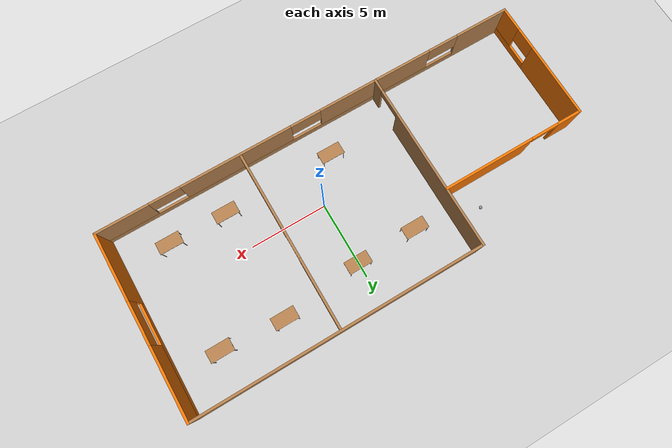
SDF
<sdf version="1.6">
 <world name="default">
  <model name="ground_plane">
   <static>1</static>
   <link name="link">
    <collision name="collision">
     <geometry><plane><normal>0 0 1</normal><size>100 100</size></plane></geometry>
     <surface>
      <contact><collide_bitmask>65535</collide_bitmask></contact>
      <friction><ode><mu>100</mu><mu2>50</mu2></ode></friction>
     </surface>
    </collision>
    <visual name="visual">
     <cast_shadows>0</cast_shadows>
     <geometry><plane><normal>0 0 1</normal><size>100 100</size></plane></geometry>
     <material>
      <script><uri>file://media/materials/scripts/gazebo.material</uri><name>Gazebo/Grey</name></script>
     </material>
    </visual>
   </link>
  </model>
  <model name="model_0">
   <pose>-1.7701 1.17451 0 0 -0 0</pose>
   <link name="Wall_0">
    <pose>-13.9251 -1.88049 0 0 0 -1.5708</pose>
    <visual name="Wall_0_Visual_0">
     <pose>-1.55568 0 1.25 0 -0 0</pose>
     <geometry><box><size>4.88864 0.15 2.5</size></box></geometry>
     <material>
      <script><uri>file://media/materials/scripts/gazebo.material</uri><name>Gazebo/Grey</name></script>
      <ambient>0.996078 0.47451 0.0196078 1</ambient>
     </material>
     <meta><layer>0</layer></meta>
    </visual>
    <collision name="Wall_0_Collision_0">
     <geometry><box><size>4.88864 0.15 2.5</size></box></geometry>
     <pose>-1.55568 0 1.25 0 -0 0</pose>
    </collision>
    <visual name="Wall_0_Visual_1">
     <pose>2.44432 0 0.25 0 -0 0</pose>
     <geometry><box><size>3.11136 0.15 0.5</size></box></geometry>
     <material>
      <script><uri>file://media/materials/scripts/gazebo.material</uri><name>Gazebo/Grey</name></script>
      <ambient>0.996078 0.47451 0.0196078 1</ambient>
     </material>
     <meta><layer>0</layer></meta>
    </visual>
    <collision name="Wall_0_Collision_1">
     <geometry><box><size>3.11136 0.15 0.5</size></box></geometry>
     <pose>2.44432 0 0.25 0 -0 0</pose>
    </collision>
    <visual name="Wall_0_Visual_2">
     <pose>3.17682 0 1.5 0 -0 0</pose>
     <geometry><box><size>1.64636 0.15 2</size></box></geometry>
     <material>
      <script><uri>file://media/materials/scripts/gazebo.material</uri><name>Gazebo/Grey</name></script>
      <ambient>0.996078 0.47451 0.0196078 1</ambient>
     </material>
     <meta><layer>0</layer></meta>
    </visual>
    <collision name="Wall_0_Collision_2">
     <geometry><box><size>1.64636 0.15 2</size></box></geometry>
     <pose>3.17682 0 1.5 0 -0 0</pose>
    </collision>
    <visual name="Wall_0_Visual_3">
     <pose>1.62114 0 1.9 0 -0 0</pose>
     <geometry><box><size>1.465 0.15 1.2</size></box></geometry>
     <material>
      <script><uri>file://media/materials/scripts/gazebo.material</uri><name>Gazebo/Grey</name></script>
      <ambient>0.996078 0.47451 0.0196078 1</ambient>
     </material>
     <meta><layer>0</layer></meta>
    </visual>
    <collision name="Wall_0_Collision_3">
     <geometry><box><size>1.465 0.15 1.2</size></box></geometry>
     <pose>1.62114 0 1.9 0 -0 0</pose>
    </collision>
   </link>
   <link name="Wall_1">
    <pose>-8.2e-05 -5.80549 0 0 -0 0</pose>
    <visual name="Wall_1_Visual_0">
     <pose>-12.1941 0 1.25 0 -0 0</pose>
     <geometry><box><size>3.61183 0.15 2.5</size></box></geometry>
     <material>
      <script><uri>file://media/materials/scripts/gazebo.material</uri><name>Gazebo/Wood</name></script>
      <ambient>0.996078 0.47451 0.0196078 1</ambient>
     </material>
     <meta><layer>0</layer></meta>
    </visual>
    <collision name="Wall_1_Collision_0">
     <geometry><box><size>3.61183 0.15 2.5</size></box></geometry>
     <pose>-12.1941 0 1.25 0 -0 0</pose>
    </collision>
    <visual name="Wall_1_Visual_1">
     <pose>1.80591 0 0.25 0 -0 0</pose>
     <geometry><box><size>24.3882 0.15 0.5</size></box></geometry>
     <material>
      <script><uri>file://media/materials/scripts/gazebo.material</uri><name>Gazebo/Wood</name></script>
      <ambient>0.996078 0.47451 0.0196078 1</ambient>
     </material>
     <meta><layer>0</layer></meta>
    </visual>
    <collision name="Wall_1_Collision_1">
     <geometry><box><size>24.3882 0.15 0.5</size></box></geometry>
     <pose>1.80591 0 0.25 0 -0 0</pose>
    </collision>
    <visual name="Wall_1_Visual_2">
     <pose>-4.52874 0 1.5 0 -0 0</pose>
     <geometry><box><size>7.67163 0.15 2</size></box></geometry>
     <material>
      <script><uri>file://media/materials/scripts/gazebo.material</uri><name>Gazebo/Wood</name></script>
      <ambient>0.996078 0.47451 0.0196078 1</ambient>
     </material>
     <meta><layer>0</layer></meta>
    </visual>
    <collision name="Wall_1_Collision_2">
     <geometry><box><size>7.67163 0.15 2</size></box></geometry>
     <pose>-4.52874 0 1.5 0 -0 0</pose>
    </collision>
    <visual name="Wall_1_Visual_3">
     <pose>4.938 0 1.5 0 -0 0</pose>
     <geometry><box><size>7.27582 0.15 2</size></box></geometry>
     <material>
      <script><uri>file://media/materials/scripts/gazebo.material</uri><name>Gazebo/Wood</name></script>
      <ambient>0.996078 0.47451 0.0196078 1</ambient>
     </material>
     <meta><layer>0</layer></meta>
    </visual>
    <collision name="Wall_1_Collision_3">
     <geometry><box><size>7.27582 0.15 2</size></box></geometry>
     <pose>4.938 0 1.5 0 -0 0</pose>
    </collision>
    <visual name="Wall_1_Visual_4">
     <pose>12.2845 0 1.5 0 -0 0</pose>
     <geometry><box><size>3.43107 0.15 2</size></box></geometry>
     <material>
      <script><uri>file://media/materials/scripts/gazebo.material</uri><name>Gazebo/Wood</name></script>
      <ambient>0.996078 0.47451 0.0196078 1</ambient>
     </material>
     <meta><layer>0</layer></meta>
    </visual>
    <collision name="Wall_1_Collision_4">
     <geometry><box><size>3.43107 0.15 2</size></box></geometry>
     <pose>12.2845 0 1.5 0 -0 0</pose>
    </collision>
    <visual name="Wall_1_Visual_5">
     <pose>-9.37637 0 1.9 0 -0 0</pose>
     <geometry><box><size>2.02361 0.15 1.2</size></box></geometry>
     <material>
      <script><uri>file://media/materials/scripts/gazebo.material</uri><name>Gazebo/Wood</name></script>
      <ambient>0.996078 0.47451 0.0196078 1</ambient>
     </material>
     <meta><layer>0</layer></meta>
    </visual>
    <collision name="Wall_1_Collision_5">
     <geometry><box><size>2.02361 0.15 1.2</size></box></geometry>
     <pose>-9.37637 0 1.9 0 -0 0</pose>
    </collision>
    <visual name="Wall_1_Visual_6">
     <pose>0.30358 0 1.9 0 -0 0</pose>
     <geometry><box><size>1.99302 0.15 1.2</size></box></geometry>
     <material>
      <script><uri>file://media/materials/scripts/gazebo.material</uri><name>Gazebo/Wood</name></script>
      <ambient>0.996078 0.47451 0.0196078 1</ambient>
     </material>
     <meta><layer>0</layer></meta>
    </visual>
    <collision name="Wall_1_Collision_6">
     <geometry><box><size>1.99302 0.15 1.2</size></box></geometry>
     <pose>0.30358 0 1.9 0 -0 0</pose>
    </collision>
    <visual name="Wall_1_Visual_7">
     <pose>9.57242 0 1.9 0 -0 0</pose>
     <geometry><box><size>1.99302 0.15 1.2</size></box></geometry>
     <material>
      <script><uri>file://media/materials/scripts/gazebo.material</uri><name>Gazebo/Wood</name></script>
      <ambient>0.996078 0.47451 0.0196078 1</ambient>
     </material>
     <meta><layer>0</layer></meta>
    </visual>
    <collision name="Wall_1_Collision_7">
     <geometry><box><size>1.99302 0.15 1.2</size></box></geometry>
     <pose>9.57242 0 1.9 0 -0 0</pose>
    </collision>
   </link>
   <link name="Wall_17">
    <pose>-4.52976 0.005045 0 0 -0 1.5708</pose>
    <visual name="Wall_17_Visual_0">
     <pose>-5.45834 0 1.25 0 -0 0</pose>
     <geometry><box><size>0.833314 0.15 2.5</size></box></geometry>
     <material>
      <script><uri>file://media/materials/scripts/gazebo.material</uri><name>Gazebo/Wood</name></script>
      <ambient>0.996078 0.47451 0.0196078 1</ambient>
     </material>
     <meta><layer>0</layer></meta>
    </visual>
    <collision name="Wall_17_Collision_0">
     <geometry><box><size>0.833314 0.15 2.5</size></box></geometry>
     <pose>-5.45834 0 1.25 0 -0 0</pose>
    </collision>
    <visual name="Wall_17_Visual_1">
     <pose>1.27963 0 1.25 0 -0 0</pose>
     <geometry><box><size>9.19075 0.15 2.5</size></box></geometry>
     <material>
      <script><uri>file://media/materials/scripts/gazebo.material</uri><name>Gazebo/Wood</name></script>
      <ambient>0.996078 0.47451 0.0196078 1</ambient>
     </material>
     <meta><layer>0</layer></meta>
    </visual>
    <collision name="Wall_17_Collision_1">
     <geometry><box><size>9.19075 0.15 2.5</size></box></geometry>
     <pose>1.27963 0 1.25 0 -0 0</pose>
    </collision>
    <visual name="Wall_17_Visual_2">
     <pose>-4.17872 0 2.25 0 -0 0</pose>
     <geometry><box><size>1.72594 0.15 0.5</size></box></geometry>
     <material>
      <script><uri>file://media/materials/scripts/gazebo.material</uri><name>Gazebo/Wood</name></script>
      <ambient>0.996078 0.47451 0.0196078 1</ambient>
     </material>
     <meta><layer>0</layer></meta>
    </visual>
    <collision name="Wall_17_Collision_2">
     <geometry><box><size>1.72594 0.15 0.5</size></box></geometry>
     <pose>-4.17872 0 2.25 0 -0 0</pose>
    </collision>
   </link>
   <link name="Wall_18">
    <collision name="Wall_18_Collision">
     <geometry><box><size>18.6048 0.15 2.5</size></box></geometry>
     <pose>0 0 1.25 0 -0 0</pose>
    </collision>
    <visual name="Wall_18_Visual">
     <pose>0 0 1.25 0 -0 0</pose>
     <geometry><box><size>18.6048 0.15 2.5</size></box></geometry>
     <material>
      <script><uri>file://media/materials/scripts/gazebo.material</uri><name>Gazebo/Wood</name></script>
      <ambient>0.996078 0.47451 0.0196078 1</ambient>
     </material>
     <meta><layer>0</layer></meta>
    </visual>
    <pose>4.69766 5.80527 0 0 -0 2.4e-05</pose>
   </link>
   <link name="Wall_28">
    <pose>4.6779 0.031971 0 0 0 -1.5708</pose>
    <visual name="Wall_28_Visual_0">
     <pose>-3.47499 0 1.25 0 -0 0</pose>
     <geometry><box><size>4.55003 0.15 2.5</size></box></geometry>
     <material>
      <script><uri>file://media/materials/scripts/gazebo.material</uri><name>Gazebo/Wood</name></script>
      <ambient>0.996078 0.47451 0.0196078 1</ambient>
     </material>
     <meta><layer>0</layer></meta>
    </visual>
    <collision name="Wall_28_Collision_0">
     <geometry><box><size>4.55003 0.15 2.5</size></box></geometry>
     <pose>-3.47499 0 1.25 0 -0 0</pose>
    </collision>
    <visual name="Wall_28_Visual_1">
     <pose>3.22975 0 1.25 0 -0 0</pose>
     <geometry><box><size>5.0405 0.15 2.5</size></box></geometry>
     <material>
      <script><uri>file://media/materials/scripts/gazebo.material</uri><name>Gazebo/Wood</name></script>
      <ambient>0.996078 0.47451 0.0196078 1</ambient>
     </material>
     <meta><layer>0</layer></meta>
    </visual>
    <collision name="Wall_28_Collision_1">
     <geometry><box><size>5.0405 0.15 2.5</size></box></geometry>
     <pose>3.22975 0 1.25 0 -0 0</pose>
    </collision>
    <visual name="Wall_28_Visual_2">
     <pose>-0.245234 0 2.25 0 -0 0</pose>
     <geometry><box><size>1.90948 0.15 0.5</size></box></geometry>
     <material>
      <script><uri>file://media/materials/scripts/gazebo.material</uri><name>Gazebo/Wood</name></script>
      <ambient>0.996078 0.47451 0.0196078 1</ambient>
     </material>
     <meta><layer>0</layer></meta>
    </visual>
    <collision name="Wall_28_Collision_2">
     <geometry><box><size>1.90948 0.15 0.5</size></box></geometry>
     <pose>-0.245234 0 2.25 0 -0 0</pose>
    </collision>
   </link>
   <link name="Wall_30">
    <pose>13.925 0 0 0 -0 1.57078</pose>
    <visual name="Wall_30_Visual_0">
     <pose>-3.67463 0 1.25 0 -0 0</pose>
     <geometry><box><size>4.41173 0.15 2.5</size></box></geometry>
     <material>
      <script><uri>file://media/materials/scripts/gazebo.material</uri><name>Gazebo/Grey</name></script>
      <ambient>0.996078 0.47451 0.0196078 1</ambient>
     </material>
     <meta><layer>0</layer></meta>
    </visual>
    <collision name="Wall_30_Collision_0">
     <geometry><box><size>4.41173 0.15 2.5</size></box></geometry>
     <pose>-3.67463 0 1.25 0 -0 0</pose>
    </collision>
    <visual name="Wall_30_Visual_1">
     <pose>2.20587 0 0.25 0 -0 0</pose>
     <geometry><box><size>7.34926 0.15 0.5</size></box></geometry>
     <material>
      <script><uri>file://media/materials/scripts/gazebo.material</uri><name>Gazebo/Grey</name></script>
      <ambient>0.996078 0.47451 0.0196078 1</ambient>
     </material>
     <meta><layer>0</layer></meta>
    </visual>
    <collision name="Wall_30_Collision_1">
     <geometry><box><size>7.34926 0.15 0.5</size></box></geometry>
     <pose>2.20587 0 0.25 0 -0 0</pose>
    </collision>
    <visual name="Wall_30_Visual_2">
     <pose>3.56946 0 1.5 0 -0 0</pose>
     <geometry><box><size>4.62207 0.15 2</size></box></geometry>
     <material>
      <script><uri>file://media/materials/scripts/gazebo.material</uri><name>Gazebo/Grey</name></script>
      <ambient>0.996078 0.47451 0.0196078 1</ambient>
     </material>
     <meta><layer>0</layer></meta>
    </visual>
    <collision name="Wall_30_Collision_2">
     <geometry><box><size>4.62207 0.15 2</size></box></geometry>
     <pose>3.56946 0 1.5 0 -0 0</pose>
    </collision>
    <visual name="Wall_30_Visual_3">
     <pose>-0.105172 0 1.9 0 -0 0</pose>
     <geometry><box><size>2.72718 0.15 1.2</size></box></geometry>
     <material>
      <script><uri>file://media/materials/scripts/gazebo.material</uri><name>Gazebo/Grey</name></script>
      <ambient>0.996078 0.47451 0.0196078 1</ambient>
     </material>
     <meta><layer>0</layer></meta>
    </visual>
    <collision name="Wall_30_Collision_3">
     <geometry><box><size>2.72718 0.15 1.2</size></box></geometry>
     <pose>-0.105172 0 1.9 0 -0 0</pose>
    </collision>
   </link>
   <link name="Wall_7">
    <pose>-9.25008 2.04451 0 0 -0 0</pose>
    <visual name="Wall_7_Visual_0">
     <pose>-3.92004 0 1.25 0 -0 0</pose>
     <geometry><box><size>1.65992 0.15 2.5</size></box></geometry>
     <material>
      <script><uri>file://media/materials/scripts/gazebo.material</uri><name>Gazebo/Grey</name></script>
      <ambient>0.996078 0.47451 0.0196078 1</ambient>
     </material>
     <meta><layer>0</layer></meta>
    </visual>
    <collision name="Wall_7_Collision_0">
     <geometry><box><size>1.65992 0.15 2.5</size></box></geometry>
     <pose>-3.92004 0 1.25 0 -0 0</pose>
    </collision>
    <visual name="Wall_7_Visual_1">
     <pose>1.74546 0 1.25 0 -0 0</pose>
     <geometry><box><size>6.00908 0.15 2.5</size></box></geometry>
     <material>
      <script><uri>file://media/materials/scripts/gazebo.material</uri><name>Gazebo/Grey</name></script>
      <ambient>0.996078 0.47451 0.0196078 1</ambient>
     </material>
     <meta><layer>0</layer></meta>
    </visual>
    <collision name="Wall_7_Collision_1">
     <geometry><box><size>6.00908 0.15 2.5</size></box></geometry>
     <pose>1.74546 0 1.25 0 -0 0</pose>
    </collision>
    <visual name="Wall_7_Visual_2">
     <pose>-2.17458 0 2.25 0 -0 0</pose>
     <geometry><box><size>1.83101 0.15 0.5</size></box></geometry>
     <material>
      <script><uri>file://media/materials/scripts/gazebo.material</uri><name>Gazebo/Grey</name></script>
      <ambient>0.996078 0.47451 0.0196078 1</ambient>
     </material>
     <meta><layer>0</layer></meta>
    </visual>
    <collision name="Wall_7_Collision_2">
     <geometry><box><size>1.83101 0.15 0.5</size></box></geometry>
     <pose>-2.17458 0 2.25 0 -0 0</pose>
    </collision>
   </link>
   <static>1</static>
  </model>
  <model name="table">
   <static>1</static>
   <link name="link">
    <collision name="surface">
     <pose>0 0 1 0 -0 0</pose>
     <geometry><box><size>1.5 0.8 0.03</size></box></geometry>
     <surface><friction><ode><mu>0.6</mu><mu2>0.6</mu2></ode></friction></surface>
    </collision>
    <visual name="visual1">
     <pose>0 0 1 0 -0 0</pose>
     <geometry><box><size>1.5 0.8 0.03</size></box></geometry>
     <material>
      <script><uri>file://media/materials/scripts/gazebo.material</uri><name>Gazebo/Wood</name></script>
     </material>
    </visual>
    <collision name="front_left_leg">
     <pose>0.68 0.38 0.5 0 -0 0</pose>
     <geometry><cylinder><radius>0.02</radius><length>1</length></cylinder></geometry>
    </collision>
    <visual name="front_left_leg">
     <pose>0.68 0.38 0.5 0 -0 0</pose>
     <geometry><cylinder><radius>0.02</radius><length>1</length></cylinder></geometry>
     <material>
      <script><uri>file://media/materials/scripts/gazebo.material</uri><name>Gazebo/Grey</name></script>
     </material>
    </visual>
    <collision name="front_right_leg">
     <pose>0.68 -0.38 0.5 0 -0 0</pose>
     <geometry><cylinder><radius>0.02</radius><length>1</length></cylinder></geometry>
    </collision>
    <visual name="front_right_leg">
     <pose>0.68 -0.38 0.5 0 -0 0</pose>
     <geometry><cylinder><radius>0.02</radius><length>1</length></cylinder></geometry>
     <material>
      <script><uri>file://media/materials/scripts/gazebo.material</uri><name>Gazebo/Grey</name></script>
     </material>
    </visual>
    <collision name="back_right_leg">
     <pose>-0.68 -0.38 0.5 0 -0 0</pose>
     <geometry><cylinder><radius>0.02</radius><length>1</length></cylinder></geometry>
    </collision>
    <visual name="back_right_leg">
     <pose>-0.68 -0.38 0.5 0 -0 0</pose>
     <geometry><cylinder><radius>0.02</radius><length>1</length></cylinder></geometry>
     <material>
      <script><uri>file://media/materials/scripts/gazebo.material</uri><name>Gazebo/Grey</name></script>
     </material>
    </visual>
    <collision name="back_left_leg">
     <pose>-0.68 0.38 0.5 0 -0 0</pose>
     <geometry><cylinder><radius>0.02</radius><length>1</length></cylinder></geometry>
    </collision>
    <visual name="back_left_leg">
     <pose>-0.68 0.38 0.5 0 -0 0</pose>
     <geometry><cylinder><radius>0.02</radius><length>1</length></cylinder></geometry>
     <material>
      <script><uri>file://media/materials/scripts/gazebo.material</uri><name>Gazebo/Grey</name></script>
     </material>
    </visual>
   </link>
   <pose>0.096719 4.10272 0 0 -0 0</pose>
  </model>
  <model name="table_0">
   <static>1</static>
   <link name="link">
    <collision name="surface">
     <pose>0 0 1 0 -0 0</pose>
     <geometry><box><size>1.5 0.8 0.03</size></box></geometry>
     <surface><friction><ode><mu>0.6</mu><mu2>0.6</mu2></ode></friction></surface>
    </collision>
    <visual name="visual1">
     <pose>0 0 1 0 -0 0</pose>
     <geometry><box><size>1.5 0.8 0.03</size></box></geometry>
     <material>
      <script><uri>file://media/materials/scripts/gazebo.material</uri><name>Gazebo/Wood</name></script>
     </material>
    </visual>
    <collision name="front_left_leg">
     <pose>0.68 0.38 0.5 0 -0 0</pose>
     <geometry><cylinder><radius>0.02</radius><length>1</length></cylinder></geometry>
    </collision>
    <visual name="front_left_leg">
     <pose>0.68 0.38 0.5 0 -0 0</pose>
     <geometry><cylinder><radius>0.02</radius><length>1</length></cylinder></geometry>
     <material>
      <script><uri>file://media/materials/scripts/gazebo.material</uri><name>Gazebo/Grey</name></script>
     </material>
    </visual>
    <collision name="front_right_leg">
     <pose>0.68 -0.38 0.5 0 -0 0</pose>
     <geometry><cylinder><radius>0.02</radius><length>1</length></cylinder></geometry>
    </collision>
    <visual name="front_right_leg">
     <pose>0.68 -0.38 0.5 0 -0 0</pose>
     <geometry><cylinder><radius>0.02</radius><length>1</length></cylinder></geometry>
     <material>
      <script><uri>file://media/materials/scripts/gazebo.material</uri><name>Gazebo/Grey</name></script>
     </material>
    </visual>
    <collision name="back_right_leg">
     <pose>-0.68 -0.38 0.5 0 -0 0</pose>
     <geometry><cylinder><radius>0.02</radius><length>1</length></cylinder></geometry>
    </collision>
    <visual name="back_right_leg">
     <pose>-0.68 -0.38 0.5 0 -0 0</pose>
     <geometry><cylinder><radius>0.02</radius><length>1</length></cylinder></geometry>
     <material>
      <script><uri>file://media/materials/scripts/gazebo.material</uri><name>Gazebo/Grey</name></script>
     </material>
    </visual>
    <collision name="back_left_leg">
     <pose>-0.68 0.38 0.5 0 -0 0</pose>
     <geometry><cylinder><radius>0.02</radius><length>1</length></cylinder></geometry>
    </collision>
    <visual name="back_left_leg">
     <pose>-0.68 0.38 0.5 0 -0 0</pose>
     <geometry><cylinder><radius>0.02</radius><length>1</length></cylinder></geometry>
     <material>
      <script><uri>file://media/materials/scripts/gazebo.material</uri><name>Gazebo/Grey</name></script>
     </material>
    </visual>
   </link>
   <pose>-3.83744 4.04169 0 0 -0 0</pose>
  </model>
  <model name="table_1">
   <static>1</static>
   <link name="link">
    <collision name="surface">
     <pose>0 0 1 0 -0 0</pose>
     <geometry><box><size>1.5 0.8 0.03</size></box></geometry>
     <surface><friction><ode><mu>0.6</mu><mu2>0.6</mu2></ode></friction></surface>
    </collision>
    <visual name="visual1">
     <pose>0 0 1 0 -0 0</pose>
     <geometry><box><size>1.5 0.8 0.03</size></box></geometry>
     <material>
      <script><uri>file://media/materials/scripts/gazebo.material</uri><name>Gazebo/Wood</name></script>
     </material>
    </visual>
    <collision name="front_left_leg">
     <pose>0.68 0.38 0.5 0 -0 0</pose>
     <geometry><cylinder><radius>0.02</radius><length>1</length></cylinder></geometry>
    </collision>
    <visual name="front_left_leg">
     <pose>0.68 0.38 0.5 0 -0 0</pose>
     <geometry><cylinder><radius>0.02</radius><length>1</length></cylinder></geometry>
     <material>
      <script><uri>file://media/materials/scripts/gazebo.material</uri><name>Gazebo/Grey</name></script>
     </material>
    </visual>
    <collision name="front_right_leg">
     <pose>0.68 -0.38 0.5 0 -0 0</pose>
     <geometry><cylinder><radius>0.02</radius><length>1</length></cylinder></geometry>
    </collision>
    <visual name="front_right_leg">
     <pose>0.68 -0.38 0.5 0 -0 0</pose>
     <geometry><cylinder><radius>0.02</radius><length>1</length></cylinder></geometry>
     <material>
      <script><uri>file://media/materials/scripts/gazebo.material</uri><name>Gazebo/Grey</name></script>
     </material>
    </visual>
    <collision name="back_right_leg">
     <pose>-0.68 -0.38 0.5 0 -0 0</pose>
     <geometry><cylinder><radius>0.02</radius><length>1</length></cylinder></geometry>
    </collision>
    <visual name="back_right_leg">
     <pose>-0.68 -0.38 0.5 0 -0 0</pose>
     <geometry><cylinder><radius>0.02</radius><length>1</length></cylinder></geometry>
     <material>
      <script><uri>file://media/materials/scripts/gazebo.material</uri><name>Gazebo/Grey</name></script>
     </material>
    </visual>
    <collision name="back_left_leg">
     <pose>-0.68 0.38 0.5 0 -0 0</pose>
     <geometry><cylinder><radius>0.02</radius><length>1</length></cylinder></geometry>
    </collision>
    <visual name="back_left_leg">
     <pose>-0.68 0.38 0.5 0 -0 0</pose>
     <geometry><cylinder><radius>0.02</radius><length>1</length></cylinder></geometry>
     <material>
      <script><uri>file://media/materials/scripts/gazebo.material</uri><name>Gazebo/Grey</name></script>
     </material>
    </visual>
   </link>
   <pose>-1.90591 -2.49079 0 0 -0 0</pose>
  </model>
  <model name="table_2">
   <static>1</static>
   <link name="link">
    <collision name="surface">
     <pose>0 0 1 0 -0 0</pose>
     <geometry><box><size>1.5 0.8 0.03</size></box></geometry>
     <surface><friction><ode><mu>0.6</mu><mu2>0.6</mu2></ode></friction></surface>
    </collision>
    <visual name="visual1">
     <pose>0 0 1 0 -0 0</pose>
     <geometry><box><size>1.5 0.8 0.03</size></box></geometry>
     <material>
      <script><uri>file://media/materials/scripts/gazebo.material</uri><name>Gazebo/Wood</name></script>
     </material>
    </visual>
    <collision name="front_left_leg">
     <pose>0.68 0.38 0.5 0 -0 0</pose>
     <geometry><cylinder><radius>0.02</radius><length>1</length></cylinder></geometry>
    </collision>
    <visual name="front_left_leg">
     <pose>0.68 0.38 0.5 0 -0 0</pose>
     <geometry><cylinder><radius>0.02</radius><length>1</length></cylinder></geometry>
     <material>
      <script><uri>file://media/materials/scripts/gazebo.material</uri><name>Gazebo/Grey</name></script>
     </material>
    </visual>
    <collision name="front_right_leg">
     <pose>0.68 -0.38 0.5 0 -0 0</pose>
     <geometry><cylinder><radius>0.02</radius><length>1</length></cylinder></geometry>
    </collision>
    <visual name="front_right_leg">
     <pose>0.68 -0.38 0.5 0 -0 0</pose>
     <geometry><cylinder><radius>0.02</radius><length>1</length></cylinder></geometry>
     <material>
      <script><uri>file://media/materials/scripts/gazebo.material</uri><name>Gazebo/Grey</name></script>
     </material>
    </visual>
    <collision name="back_right_leg">
     <pose>-0.68 -0.38 0.5 0 -0 0</pose>
     <geometry><cylinder><radius>0.02</radius><length>1</length></cylinder></geometry>
    </collision>
    <visual name="back_right_leg">
     <pose>-0.68 -0.38 0.5 0 -0 0</pose>
     <geometry><cylinder><radius>0.02</radius><length>1</length></cylinder></geometry>
     <material>
      <script><uri>file://media/materials/scripts/gazebo.material</uri><name>Gazebo/Grey</name></script>
     </material>
    </visual>
    <collision name="back_left_leg">
     <pose>-0.68 0.38 0.5 0 -0 0</pose>
     <geometry><cylinder><radius>0.02</radius><length>1</length></cylinder></geometry>
    </collision>
    <visual name="back_left_leg">
     <pose>-0.68 0.38 0.5 0 -0 0</pose>
     <geometry><cylinder><radius>0.02</radius><length>1</length></cylinder></geometry>
     <material>
      <script><uri>file://media/materials/scripts/gazebo.material</uri><name>Gazebo/Grey</name></script>
     </material>
    </visual>
   </link>
   <pose>5.33142 -2.44138 0 0 -0 0</pose>
  </model>
  <model name="table_3">
   <static>1</static>
   <link name="link">
    <collision name="surface">
     <pose>0 0 1 0 -0 0</pose>
     <geometry><box><size>1.5 0.8 0.03</size></box></geometry>
     <surface><friction><ode><mu>0.6</mu><mu2>0.6</mu2></ode></friction></surface>
    </collision>
    <visual name="visual1">
     <pose>0 0 1 0 -0 0</pose>
     <geometry><box><size>1.5 0.8 0.03</size></box></geometry>
     <material>
      <script><uri>file://media/materials/scripts/gazebo.material</uri><name>Gazebo/Wood</name></script>
     </material>
    </visual>
    <collision name="front_left_leg">
     <pose>0.68 0.38 0.5 0 -0 0</pose>
     <geometry><cylinder><radius>0.02</radius><length>1</length></cylinder></geometry>
    </collision>
    <visual name="front_left_leg">
     <pose>0.68 0.38 0.5 0 -0 0</pose>
     <geometry><cylinder><radius>0.02</radius><length>1</length></cylinder></geometry>
     <material>
      <script><uri>file://media/materials/scripts/gazebo.material</uri><name>Gazebo/Grey</name></script>
     </material>
    </visual>
    <collision name="front_right_leg">
     <pose>0.68 -0.38 0.5 0 -0 0</pose>
     <geometry><cylinder><radius>0.02</radius><length>1</length></cylinder></geometry>
    </collision>
    <visual name="front_right_leg">
     <pose>0.68 -0.38 0.5 0 -0 0</pose>
     <geometry><cylinder><radius>0.02</radius><length>1</length></cylinder></geometry>
     <material>
      <script><uri>file://media/materials/scripts/gazebo.material</uri><name>Gazebo/Grey</name></script>
     </material>
    </visual>
    <collision name="back_right_leg">
     <pose>-0.68 -0.38 0.5 0 -0 0</pose>
     <geometry><cylinder><radius>0.02</radius><length>1</length></cylinder></geometry>
    </collision>
    <visual name="back_right_leg">
     <pose>-0.68 -0.38 0.5 0 -0 0</pose>
     <geometry><cylinder><radius>0.02</radius><length>1</length></cylinder></geometry>
     <material>
      <script><uri>file://media/materials/scripts/gazebo.material</uri><name>Gazebo/Grey</name></script>
     </material>
    </visual>
    <collision name="back_left_leg">
     <pose>-0.68 0.38 0.5 0 -0 0</pose>
     <geometry><cylinder><radius>0.02</radius><length>1</length></cylinder></geometry>
    </collision>
    <visual name="back_left_leg">
     <pose>-0.68 0.38 0.5 0 -0 0</pose>
     <geometry><cylinder><radius>0.02</radius><length>1</length></cylinder></geometry>
     <material>
      <script><uri>file://media/materials/scripts/gazebo.material</uri><name>Gazebo/Grey</name></script>
     </material>
    </visual>
   </link>
   <pose>9.00895 -2.49704 0 0 -0 0</pose>
  </model>
  <model name="table_4">
   <static>1</static>
   <link name="link">
    <collision name="surface">
     <pose>0 0 1 0 -0 0</pose>
     <geometry><box><size>1.5 0.8 0.03</size></box></geometry>
     <surface><friction><ode><mu>0.6</mu><mu2>0.6</mu2></ode></friction></surface>
    </collision>
    <visual name="visual1">
     <pose>0 0 1 0 -0 0</pose>
     <geometry><box><size>1.5 0.8 0.03</size></box></geometry>
     <material>
      <script><uri>file://media/materials/scripts/gazebo.material</uri><name>Gazebo/Wood</name></script>
     </material>
    </visual>
    <collision name="front_left_leg">
     <pose>0.68 0.38 0.5 0 -0 0</pose>
     <geometry><cylinder><radius>0.02</radius><length>1</length></cylinder></geometry>
    </collision>
    <visual name="front_left_leg">
     <pose>0.68 0.38 0.5 0 -0 0</pose>
     <geometry><cylinder><radius>0.02</radius><length>1</length></cylinder></geometry>
     <material>
      <script><uri>file://media/materials/scripts/gazebo.material</uri><name>Gazebo/Grey</name></script>
     </material>
    </visual>
    <collision name="front_right_leg">
     <pose>0.68 -0.38 0.5 0 -0 0</pose>
     <geometry><cylinder><radius>0.02</radius><length>1</length></cylinder></geometry>
    </collision>
    <visual name="front_right_leg">
     <pose>0.68 -0.38 0.5 0 -0 0</pose>
     <geometry><cylinder><radius>0.02</radius><length>1</length></cylinder></geometry>
     <material>
      <script><uri>file://media/materials/scripts/gazebo.material</uri><name>Gazebo/Grey</name></script>
     </material>
    </visual>
    <collision name="back_right_leg">
     <pose>-0.68 -0.38 0.5 0 -0 0</pose>
     <geometry><cylinder><radius>0.02</radius><length>1</length></cylinder></geometry>
    </collision>
    <visual name="back_right_leg">
     <pose>-0.68 -0.38 0.5 0 -0 0</pose>
     <geometry><cylinder><radius>0.02</radius><length>1</length></cylinder></geometry>
     <material>
      <script><uri>file://media/materials/scripts/gazebo.material</uri><name>Gazebo/Grey</name></script>
     </material>
    </visual>
    <collision name="back_left_leg">
     <pose>-0.68 0.38 0.5 0 -0 0</pose>
     <geometry><cylinder><radius>0.02</radius><length>1</length></cylinder></geometry>
    </collision>
    <visual name="back_left_leg">
     <pose>-0.68 0.38 0.5 0 -0 0</pose>
     <geometry><cylinder><radius>0.02</radius><length>1</length></cylinder></geometry>
     <material>
      <script><uri>file://media/materials/scripts/gazebo.material</uri><name>Gazebo/Grey</name></script>
     </material>
    </visual>
   </link>
   <pose>5.30677 4.71814 0 0 -0 0</pose>
  </model>
  <model name="table_5">
   <static>1</static>
   <link name="link">
    <collision name="surface">
     <pose>0 0 1 0 -0 0</pose>
     <geometry><box><size>1.5 0.8 0.03</size></box></geometry>
     <surface><friction><ode><mu>0.6</mu><mu2>0.6</mu2></ode></friction></surface>
    </collision>
    <visual name="visual1">
     <pose>0 0 1 0 -0 0</pose>
     <geometry><box><size>1.5 0.8 0.03</size></box></geometry>
     <material>
      <script><uri>file://media/materials/scripts/gazebo.material</uri><name>Gazebo/Wood</name></script>
     </material>
    </visual>
    <collision name="front_left_leg">
     <pose>0.68 0.38 0.5 0 -0 0</pose>
     <geometry><cylinder><radius>0.02</radius><length>1</length></cylinder></geometry>
    </collision>
    <visual name="front_left_leg">
     <pose>0.68 0.38 0.5 0 -0 0</pose>
     <geometry><cylinder><radius>0.02</radius><length>1</length></cylinder></geometry>
     <material>
      <script><uri>file://media/materials/scripts/gazebo.material</uri><name>Gazebo/Grey</name></script>
     </material>
    </visual>
    <collision name="front_right_leg">
     <pose>0.68 -0.38 0.5 0 -0 0</pose>
     <geometry><cylinder><radius>0.02</radius><length>1</length></cylinder></geometry>
    </collision>
    <visual name="front_right_leg">
     <pose>0.68 -0.38 0.5 0 -0 0</pose>
     <geometry><cylinder><radius>0.02</radius><length>1</length></cylinder></geometry>
     <material>
      <script><uri>file://media/materials/scripts/gazebo.material</uri><name>Gazebo/Grey</name></script>
     </material>
    </visual>
    <collision name="back_right_leg">
     <pose>-0.68 -0.38 0.5 0 -0 0</pose>
     <geometry><cylinder><radius>0.02</radius><length>1</length></cylinder></geometry>
    </collision>
    <visual name="back_right_leg">
     <pose>-0.68 -0.38 0.5 0 -0 0</pose>
     <geometry><cylinder><radius>0.02</radius><length>1</length></cylinder></geometry>
     <material>
      <script><uri>file://media/materials/scripts/gazebo.material</uri><name>Gazebo/Grey</name></script>
     </material>
    </visual>
    <collision name="back_left_leg">
     <pose>-0.68 0.38 0.5 0 -0 0</pose>
     <geometry><cylinder><radius>0.02</radius><length>1</length></cylinder></geometry>
    </collision>
    <visual name="back_left_leg">
     <pose>-0.68 0.38 0.5 0 -0 0</pose>
     <geometry><cylinder><radius>0.02</radius><length>1</length></cylinder></geometry>
     <material>
      <script><uri>file://media/materials/scripts/gazebo.material</uri><name>Gazebo/Grey</name></script>
     </material>
    </visual>
   </link>
   <pose>9.28867 4.42633 0 0 -0 0</pose>
  </model>
  <model name="my_ball">
   <link name="link_0">
    <inertial>
     <mass>1</mass>
     <inertia><ixx>0.1</ixx><ixy>0</ixy><ixz>0</ixz><iyy>0.1</iyy><iyz>0</iyz><izz>0.1</izz></inertia>
    </inertial>
    <visual name="visual">
     <geometry><sphere><radius>0.1</radius></sphere></geometry>
     <material>
      <lighting>1</lighting>
      <script><uri>file://media/materials/scripts/gazebo.material</uri><name>Gazebo/Grey</name></script>
      <shader type="pixel"><normal_map>__default__</normal_map></shader>
      <ambient>1 1 1 1</ambient>
      <diffuse>1 1 1 1</diffuse>
      <specular>1 1 1 1</specular>
      <emissive>1 1 1 1</emissive>
     </material>
    </visual>
    <collision name="collision">
     <geometry><sphere><radius>0.1</radius></sphere></geometry>
     <surface>
      <friction>
       <ode><mu>1</mu><mu2>1</mu2><fdir1>0 0 0</fdir1><slip1>0</slip1><slip2>0</slip2></ode>
       <torsional>
        <coefficient>1</coefficient>
        <patch_radius>0</patch_radius>
        <surface_radius>0</surface_radius>
        <use_patch_radius>1</use_patch_radius>
        <ode><slip>0</slip></ode>
       </torsional>
      </friction>
      <bounce><restitution_coefficient>0</restitution_coefficient><threshold>1e+06</threshold></bounce>
      <contact>
       <collide_without_contact>0</collide_without_contact>
       <collide_without_contact_bitmask>1</collide_without_contact_bitmask>
       <collide_bitmask>1</collide_bitmask>
       <ode>
        <soft_cfm>0</soft_cfm>
        <soft_erp>0.2</soft_erp>
        <kp>1e+13</kp>
        <kd>1</kd>
        <max_vel>0.01</max_vel>
        <min_depth>0</min_depth>
       </ode>
       <bullet>
        <split_impulse>1</split_impulse>
        <split_impulse_penetration_threshold>-0.01</split_impulse_penetration_threshold>
        <soft_cfm>0</soft_cfm>
        <soft_erp>0.2</soft_erp>
        <kp>1e+13</kp>
        <kd>1</kd>
       </bullet>
      </contact>
     </surface>
    </collision>
   </link>
   <static>0</static>
   <pose>-8.01291 4.95087 0.5 0 -0 0</pose>
  </model>
 </world>
</sdf>
